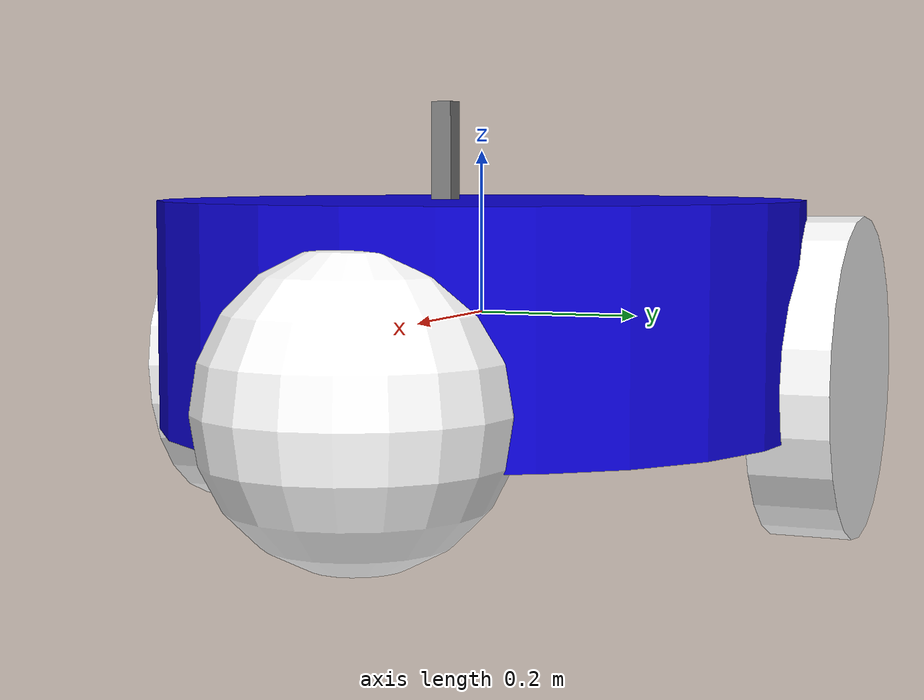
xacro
<?xml version="1.0"?>

<robot name="NO_NAME_GIVEN_FOR_THE_ROBOT" xmlns:xacro="http://ros.org/wiki/xacro">
  <!-- Импорт файла с подключениями различных плагинов Gazebo -->
  <xacro:include filename="robot.gazebo.xacro" />
  <!-- Импорт файла с настройками плагина детали лидара и описанием его внешнего вида -->
  <xacro:include filename="depth.urdf.xacro" />

  <!-- Числовые константы (просто упрощаем себе жизнь) -->
  <xacro:property name="base_width" value="0.40"/>
  <xacro:property name="base_length" value="0.28"/>

  <xacro:property name="wheel_radius" value="0.20"/>
  <xacro:property name="wheel_width" value="0.10"/>
  <xacro:property name="wheel_ygap" value="0.20"/>
  <xacro:property name="wheel_zoff" value="0.08"/>
  <xacro:property name="wheel_xoff" value="0.14"/>

  <xacro:property name="caster_xoff" value="0.36"/>
  <xacro:property name="caster_zoff" value="0.08"/>

  <!-- Здесь описываем "материалы" (из какого цвета будут детаели) -->
  <material name="royalblue">
    <color rgba="0.045 0.005 0.855 1"/>
  </material>
  <material name="white">
    <color rgba="1.0 1.0 1.0 1"/>
  </material>

  <!-- Задаём макросы xacro -->
  <xacro:macro name="box_inertia" params="m w h d">
    <inertial>
      <origin xyz="0 0 0" rpy="${pi/2} 0 ${pi/2}"/>
      <mass value="${m}"/>
      <inertia ixx="${(m/12) * (h*h + d*d)}" ixy="0.0" ixz="0.0" iyy="${(m/12) * (w*w + d*d)}" iyz="0.0" izz="${(m/12) * (w*w + h*h)}"/>
    </inertial>
  </xacro:macro>

  <xacro:macro name="cylinder_inertia" params="m r h">
    <inertial>
      <origin xyz="0 0 0" rpy="${pi/2} 0 0" />
      <mass value="${m}"/>
      <inertia ixx="${(m/12) * (3*r*r + h*h)}" ixy = "0" ixz = "0" iyy="${(m/12) * (3*r*r + h*h)}" iyz = "0" izz="${(m/2) * (r*r)}"/>
    </inertial>
  </xacro:macro>

  <xacro:macro name="sphere_inertia" params="m r">
    <inertial>
      <mass value="${m}"/>
      <inertia ixx="${(2/5) * m * (r*r)}" ixy="0.0" ixz="0.0" iyy="${(2/5) * m * (r*r)}" iyz="0.0" izz="${(2/5) * m * (r*r)}"/>
    </inertial>
  </xacro:macro>

  <!-- Базовая фигура, к ней должно крепиться всё остальное -->
  <link name="base_link">
    <visual>
      <geometry>
        <cylinder length="${base_length}" radius="${base_width}"/>
      </geometry>
      <material name="royalblue" />
    </visual>

    <collision>
      <geometry>
        <cylinder length="${base_length}" radius="${base_width}"/>
      </geometry>
    </collision>

    <xacro:cylinder_inertia m="15" r="${base_width}" h="${base_length}"/>
  </link>

  <!-- Колёса, задаются сразу несколько колёс через макрос -->
  <xacro:macro name="wheel" params="prefix x_reflect y_reflect">
    <link name="${prefix}_link">
      <visual>
        <origin xyz="0 0 0" rpy="${pi/2} 0 0"/>
        <geometry>
            <cylinder radius="${wheel_radius}" length="${wheel_width}"/>
        </geometry>
        <material name="white" />
      </visual>

      <collision>
        <origin xyz="0 0 0" rpy="${pi/2} 0 0"/>
        <geometry>
          <cylinder radius="${wheel_radius}" length="${wheel_width}"/>
        </geometry>
      </collision>

      <xacro:cylinder_inertia m="0.5" r="${wheel_radius}" h="${wheel_width}"/>
    </link>

    <joint name="${prefix}_joint" type="continuous">
      <parent link="base_link"/>
      <child link="${prefix}_link"/>
      <origin xyz="${x_reflect*wheel_xoff} ${y_reflect*(base_width/2+wheel_ygap)} ${-wheel_zoff}" rpy="0 0 0"/>
      <axis xyz="0 1 0"/>
    </joint>
  </xacro:macro>

  <xacro:wheel prefix="wheel_left" x_reflect="-1" y_reflect="1" />
  <xacro:wheel prefix="wheel_right" x_reflect="-1" y_reflect="-1" />

  <!-- Сфера спереди снизу, называется кастер -->
  <link name="caster">
    <visual>
      <geometry>
        <sphere radius="${(wheel_radius+wheel_zoff-(base_width/4))}"/>
      </geometry>
      <material name="white" />
    </visual>

    <collision>
      <origin xyz="0 0 0" rpy="0 0 0"/>
      <geometry>
        <sphere radius="${(wheel_radius+wheel_zoff-(base_width/4))}"/>
      </geometry>
    </collision>

    <xacro:sphere_inertia m="0.5" r="${(wheel_radius+wheel_zoff-(base_width/4))}"/>
  </link>

  <joint name="caster_joint" type="fixed">
    <parent link="base_link"/>
    <child link="caster"/>
    <origin xyz="${caster_xoff} 0.0 ${-caster_zoff}" rpy="0 0 0"/>
  </joint>
</robot>

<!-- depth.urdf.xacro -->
<robot xmlns:xacro="http://www.ros.org/wiki/xacro">

    <xacro:property name="M_PI" value="3.1415926535897931" />

    <joint name="depth_joint" type="fixed">
        <parent link="base_link"/>
        <child link="depth_frame"/>
        <origin xyz="0 0 0.2" rpy="0 0 0"/>
    </joint>

    <material name="aluminum">
      <color rgba="0.5 0.5 0.5 1"/>
    </material>

    <link name="depth_frame">
        <visual>
            <origin xyz="0.00465 -0.0475 0" rpy="${M_PI/2} 0 ${M_PI/2}"/>
            <geometry>
                <box size="0.026 0.124 0.029"/>
            </geometry>
            <material name="aluminum"/>
        </visual>
        <collision>
            <origin xyz="0.00465 -0.0475 0" rpy="${M_PI/2} 0 ${M_PI/2}"/>
            <geometry>
                <box size="0.026 0.124 0.029"/>
            </geometry>
        </collision>
        <inertial>
            <origin xyz="0 0 0" rpy="0 0 0"/>
            <mass value="0.116" />
            <inertia ixx="${(1/12) * 0.116 * (0.026*0.026+0.029*0.029)}" ixy="0.0" ixz="0.0"
                     iyy="${(1/12) * 0.116 * (0.124*0.124+0.029*0.029)}" iyz="0.0"
                     izz="${(1/12) * 0.116 * (0.124*0.124+0.026*0.026)}" />
        </inertial>
    </link>

    <gazebo reference="depth_frame">
        <sensor name='depth_sensor_frame' type='depth_camera'>
            <gz_frame_id>robot/depth_frame</gz_frame_id>
            <pose> 0 0 0 0 0 0 </pose>
            <always_on>true</always_on>
            <update_rate>10</update_rate>
            <camera>
                <horizontal_fov>1.51843645</horizontal_fov>
                <image>
                    <width>848</width>
                    <height>480</height>
                    <format>R_FLOAT32</format>
                </image>
                <clip>
                    <near>0.1</near>
                    <far>10</far>
                </clip>
                <lens>
                    <intrinsics>
                    <fx>421.61578369140625</fx>
                    <fy>421.61578369140625</fy>
                    <cx>422.2854309082031</cx>
                    <cy>236.57237243652344</cy>
                    <s>0</s>
                    </intrinsics>
                </lens>
                <noise>
                    <type>gaussian</type>
                    <mean>0.0</mean>
                    <stddev>0.007</stddev>
                </noise>
            </camera>
        </sensor>
        <sensor name="color_sensor_frame" type="camera">
            <gz_frame_id>robot/depth_frame</gz_frame_id>
            <pose>0 0 0 0 0 0</pose>
            <update_rate>10</update_rate>
            <always_on>true</always_on>
            <camera>
                <horizontal_fov>1.4</horizontal_fov>
                <image>
                    <width>848</width>
                    <height>480</height>
                </image>
                <clip>
                    <near>0.1</near>
                    <far>50</far>
                </clip>
                <lens>
                    <intrinsics>
                    <fx>615.9603271484375</fx>
                    <fy>616.227294921875</fy>
                    <cx>419.83026123046875</cx>
                    <cy>245.1431427001953</cy>
                    <s>0</s>
                    </intrinsics>
                </lens>
            </camera>
        </sensor>
    </gazebo>
</robot>
